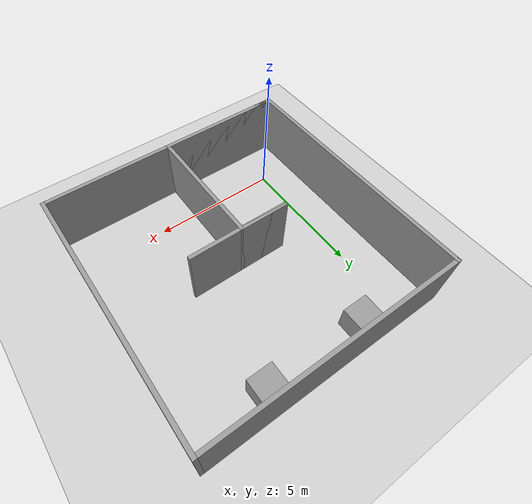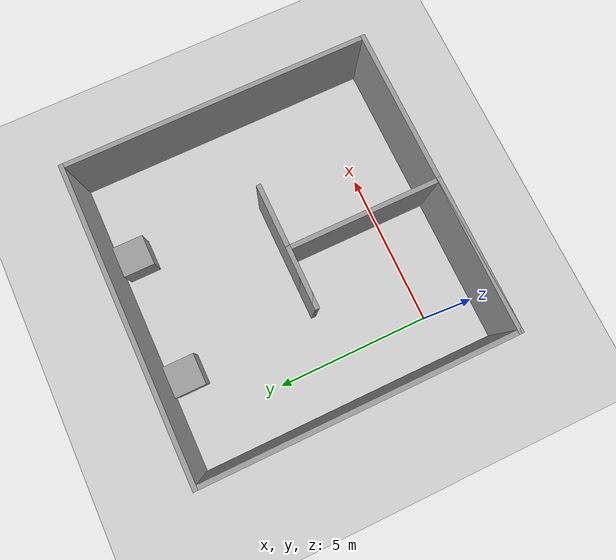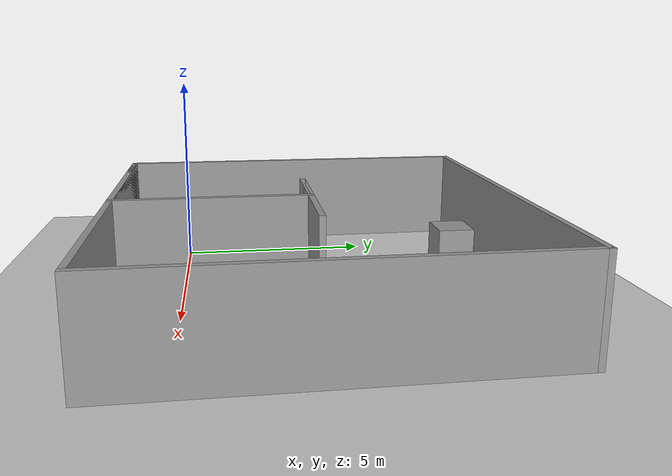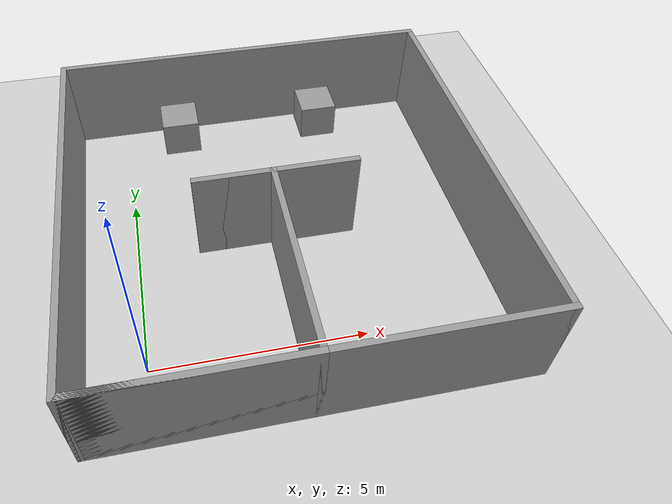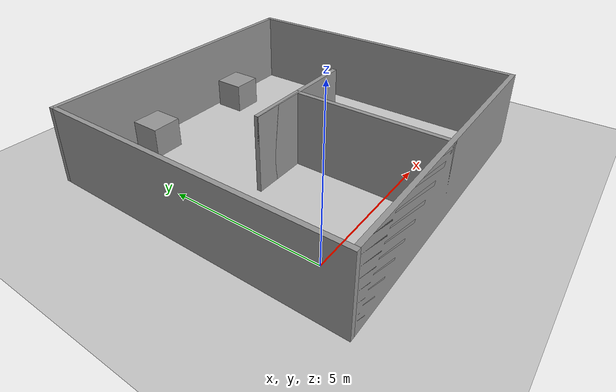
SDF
<sdf version="1.7">
 <world name="default">
  <light name="sun" type="directional">
   <pose>0 0 10 0 -0 0</pose>
   <diffuse>0.8 0.8 0.8 1</diffuse>
   <specular>0.2 0.2 0.2 1</specular>
   <attenuation>
    <range>1000</range>
    <constant>0.9</constant>
    <linear>0.01</linear>
    <quadratic>0.001</quadratic>
   </attenuation>
   <direction>-0.5 0.1 -0.9</direction>
   <spot><inner_angle>0</inner_angle><outer_angle>0</outer_angle><falloff>0</falloff></spot>
  </light>
  <model name="ground_plane">
   <static>1</static>
   <link name="link">
    <collision name="collision">
     <geometry><plane><normal>0 0 1</normal><size>100 100</size></plane></geometry>
     <surface>
      <contact><collide_bitmask>65535</collide_bitmask></contact>
      <friction><ode><mu>100</mu><mu2>50</mu2></ode></friction>
     </surface>
    </collision>
    <visual name="visual">
     <cast_shadows>0</cast_shadows>
     <geometry><plane><normal>0 0 1</normal><size>100 100</size></plane></geometry>
     <material>
      <script><uri>file://media/materials/scripts/gazebo.material</uri><name>Gazebo/Grey</name></script>
     </material>
    </visual>
   </link>
  </model>
  <gravity>0 0 -9.8</gravity>
  <magnetic_field>6e-06 2.3e-05 -4.2e-05</magnetic_field>
  <atmosphere type="adiabatic"/>
  <physics type="ode">
   <max_step_size>0.001</max_step_size>
   <real_time_factor>1</real_time_factor>
   <real_time_update_rate>1000</real_time_update_rate>
  </physics>
  <scene><ambient>0.4 0.4 0.4 1</ambient><background>0.7 0.7 0.7 1</background><shadows>1</shadows></scene>
  <spherical_coordinates>
   <surface_model>EARTH_WGS84</surface_model>
   <latitude_deg>0</latitude_deg>
   <longitude_deg>0</longitude_deg>
   <elevation>0</elevation>
   <heading_deg>0</heading_deg>
  </spherical_coordinates>
  <model name="T_map">
   <pose>3.51171 3.26179 0 0 -0 0</pose>
   <link name="Wall_31">
    <collision name="Wall_31_Collision">
     <geometry><box><size>10 0.15 2.5</size></box></geometry>
     <pose>0 0 1.25 0 -0 0</pose>
    </collision>
    <visual name="Wall_31_Visual">
     <pose>0 0 1.25 0 -0 0</pose>
     <geometry><box><size>10 0.15 2.5</size></box></geometry>
     <material>
      <script><uri>file://media/materials/scripts/gazebo.material</uri><name>Gazebo/Grey</name></script>
      <ambient>1 1 1 1</ambient>
     </material>
     <meta><layer>0</layer></meta>
    </visual>
    <pose>-4.925 -0 0 0 -0 -1.5708</pose>
   </link>
   <link name="Wall_32">
    <collision name="Wall_32_Collision">
     <geometry><box><size>10 0.15 2.5</size></box></geometry>
     <pose>0 0 1.25 0 -0 0</pose>
    </collision>
    <visual name="Wall_32_Visual">
     <pose>0 0 1.25 0 -0 0</pose>
     <geometry><box><size>10 0.15 2.5</size></box></geometry>
     <material>
      <script><uri>file://media/materials/scripts/gazebo.material</uri><name>Gazebo/Grey</name></script>
      <ambient>1 1 1 1</ambient>
     </material>
     <meta><layer>0</layer></meta>
    </visual>
    <pose>0 -4.925 0 0 -0 0</pose>
   </link>
   <link name="Wall_33">
    <collision name="Wall_33_Collision">
     <geometry><box><size>10 0.15 2.5</size></box></geometry>
     <pose>0 0 1.25 0 -0 0</pose>
    </collision>
    <visual name="Wall_33_Visual">
     <pose>0 0 1.25 0 -0 0</pose>
     <geometry><box><size>10 0.15 2.5</size></box></geometry>
     <material>
      <script><uri>file://media/materials/scripts/gazebo.material</uri><name>Gazebo/Grey</name></script>
      <ambient>1 1 1 1</ambient>
     </material>
     <meta><layer>0</layer></meta>
    </visual>
    <pose>4.925 -0 0 0 -0 1.5708</pose>
   </link>
   <link name="Wall_34">
    <collision name="Wall_34_Collision">
     <geometry><box><size>10 0.15 2.5</size></box></geometry>
     <pose>0 0 1.25 0 -0 0</pose>
    </collision>
    <visual name="Wall_34_Visual">
     <pose>0 0 1.25 0 -0 0</pose>
     <geometry><box><size>10 0.15 2.5</size></box></geometry>
     <material>
      <script><uri>file://media/materials/scripts/gazebo.material</uri><name>Gazebo/Grey</name></script>
      <ambient>1 1 1 1</ambient>
     </material>
     <meta><layer>0</layer></meta>
    </visual>
    <pose>0 4.925 0 0 -0 3.14159</pose>
   </link>
   <link name="Wall_36">
    <collision name="Wall_36_Collision">
     <geometry><box><size>5 0.15 2.5</size></box></geometry>
     <pose>0 0 1.25 0 -0 0</pose>
    </collision>
    <visual name="Wall_36_Visual">
     <pose>0 0 1.25 0 -0 0</pose>
     <geometry><box><size>5 0.15 2.5</size></box></geometry>
     <material>
      <script><uri>file://media/materials/scripts/gazebo.material</uri><name>Gazebo/Grey</name></script>
      <ambient>1 1 1 1</ambient>
     </material>
     <meta><layer>0</layer></meta>
    </visual>
    <pose>-2.5 -4.925 0 0 -0 0</pose>
   </link>
   <link name="Wall_37">
    <collision name="Wall_37_Collision">
     <geometry><box><size>5 0.15 2.5</size></box></geometry>
     <pose>0 0 1.25 0 -0 0</pose>
    </collision>
    <visual name="Wall_37_Visual">
     <pose>0 0 1.25 0 -0 0</pose>
     <geometry><box><size>5 0.15 2.5</size></box></geometry>
     <material>
      <script><uri>file://media/materials/scripts/gazebo.material</uri><name>Gazebo/Grey</name></script>
      <ambient>1 1 1 1</ambient>
     </material>
     <meta><layer>0</layer></meta>
    </visual>
    <pose>-0.075 -2.5 0 0 -0 1.5708</pose>
   </link>
   <link name="Wall_38">
    <collision name="Wall_38_Collision">
     <geometry><box><size>2 0.15 2.5</size></box></geometry>
     <pose>0 0 1.25 0 -0 0</pose>
    </collision>
    <visual name="Wall_38_Visual">
     <pose>0 0 1.25 0 -0 0</pose>
     <geometry><box><size>2 0.15 2.5</size></box></geometry>
     <material>
      <script><uri>file://media/materials/scripts/gazebo.material</uri><name>Gazebo/Grey</name></script>
      <ambient>1 1 1 1</ambient>
     </material>
     <meta><layer>0</layer></meta>
    </visual>
    <pose>-1 -0.075 0 0 -0 3.14159</pose>
   </link>
   <link name="Wall_39">
    <collision name="Wall_39_Collision">
     <geometry><box><size>4 0.15 2.5</size></box></geometry>
     <pose>0 0 1.25 0 -0 0</pose>
    </collision>
    <visual name="Wall_39_Visual">
     <pose>0 0 1.25 0 -0 0</pose>
     <geometry><box><size>4 0.15 2.5</size></box></geometry>
     <material>
      <script><uri>file://media/materials/scripts/gazebo.material</uri><name>Gazebo/Grey</name></script>
      <ambient>1 1 1 1</ambient>
     </material>
     <meta><layer>0</layer></meta>
    </visual>
    <pose>0 -0.075 0 0 -0 0</pose>
   </link>
   <static>1</static>
  </model>
  <model name="unit_box">
   <pose>1.50623 7.49709 0.499995 -1e-05 -0 0</pose>
   <link name="link">
    <inertial>
     <mass>1</mass>
     <inertia>
      <ixx>0.166667</ixx>
      <ixy>0</ixy>
      <ixz>0</ixz>
      <iyy>0.166667</iyy>
      <iyz>0</iyz>
      <izz>0.166667</izz>
     </inertia>
    </inertial>
    <collision name="collision"><geometry><box><size>1 1 1</size></box></geometry></collision>
    <visual name="visual">
     <geometry><box><size>1 1 1</size></box></geometry>
     <material>
      <script><name>Gazebo/Grey</name><uri>file://media/materials/scripts/gazebo.material</uri></script>
     </material>
    </visual>
   </link>
  </model>
  <model name="unit_box_0">
   <pose>5.50422 7.50026 0.5 0 -0 0</pose>
   <link name="link">
    <inertial>
     <mass>1</mass>
     <inertia>
      <ixx>0.166667</ixx>
      <ixy>0</ixy>
      <ixz>0</ixz>
      <iyy>0.166667</iyy>
      <iyz>0</iyz>
      <izz>0.166667</izz>
     </inertia>
    </inertial>
    <collision name="collision"><geometry><box><size>1 1 1</size></box></geometry></collision>
    <visual name="visual">
     <geometry><box><size>1 1 1</size></box></geometry>
     <material>
      <script><name>Gazebo/Grey</name><uri>file://media/materials/scripts/gazebo.material</uri></script>
     </material>
    </visual>
   </link>
  </model>
 </world>
</sdf>
